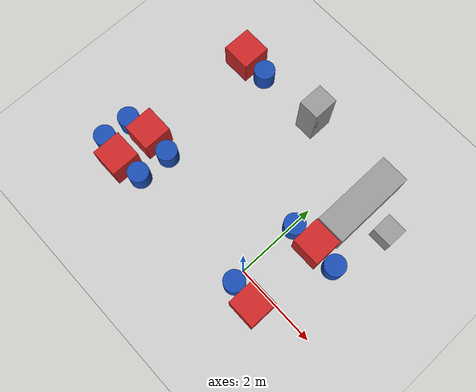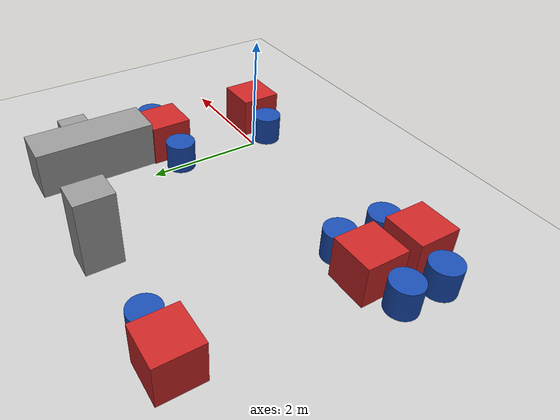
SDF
<sdf version="1.7">
 <world name="default">
  <model name="ground_plane">
   <static>1</static>
   <link name="link">
    <collision name="collision">
     <geometry><plane><normal>0 0 1</normal><size>100 100</size></plane></geometry>
     <surface>
      <contact><collide_bitmask>65535</collide_bitmask></contact>
      <friction><ode><mu>100</mu><mu2>50</mu2></ode></friction>
     </surface>
    </collision>
    <visual name="visual">
     <cast_shadows>0</cast_shadows>
     <geometry><plane><normal>0 0 1</normal><size>100 100</size></plane></geometry>
     <material>
      <script><uri>file://media/materials/scripts/gazebo.material</uri><name>Gazebo/Grey</name></script>
     </material>
    </visual>
   </link>
  </model>
  <model name="chair2_clone">
   <link name="link">
    <inertial>
     <mass>1</mass>
     <inertia><ixx>0.145833</ixx><ixy>0</ixy><ixz>0</ixz><iyy>0.145833</iyy><iyz>0</iyz><izz>0.125</izz></inertia>
    </inertial>
    <visual name="visual">
     <geometry><cylinder><radius>0.25</radius><length>0.5</length></cylinder></geometry>
     <material>
      <script><name>Gazebo/Grey</name><uri>file://media/materials/scripts/gazebo.material</uri></script>
      <shader type="pixel"><normal_map>__default__</normal_map></shader>
      <ambient>0.1 0.3 0.7 1</ambient>
      <diffuse>0.7 0.7 0.7 1</diffuse>
      <specular>0.01 0.01 0.01 1</specular>
      <emissive>0 0 0 1</emissive>
     </material>
    </visual>
    <collision name="collision">
     <geometry><cylinder><radius>0.25</radius><length>0.5</length></cylinder></geometry>
     <surface>
      <friction>
       <ode><mu>1</mu><mu2>1</mu2><fdir1>0 0 0</fdir1><slip1>0</slip1><slip2>0</slip2></ode>
       <torsional>
        <coefficient>1</coefficient>
        <patch_radius>0</patch_radius>
        <surface_radius>0</surface_radius>
        <use_patch_radius>1</use_patch_radius>
        <ode><slip>0</slip></ode>
       </torsional>
      </friction>
      <bounce><restitution_coefficient>0</restitution_coefficient><threshold>1e+06</threshold></bounce>
      <contact>
       <collide_without_contact>0</collide_without_contact>
       <collide_without_contact_bitmask>1</collide_without_contact_bitmask>
       <collide_bitmask>1</collide_bitmask>
       <ode>
        <soft_cfm>0</soft_cfm>
        <soft_erp>0.2</soft_erp>
        <kp>1e+13</kp>
        <kd>1</kd>
        <max_vel>0.01</max_vel>
        <min_depth>0</min_depth>
       </ode>
       <bullet>
        <split_impulse>1</split_impulse>
        <split_impulse_penetration_threshold>-0.01</split_impulse_penetration_threshold>
        <soft_cfm>0</soft_cfm>
        <soft_erp>0.2</soft_erp>
        <kp>1e+13</kp>
        <kd>1</kd>
       </bullet>
      </contact>
     </surface>
    </collision>
   </link>
   <static>1</static>
   <pose>-4.34714 -0.258544 0.25 0 -0 0</pose>
  </model>
  <model name="chair2_clone_1">
   <link name="link">
    <inertial>
     <mass>1</mass>
     <inertia><ixx>0.145833</ixx><ixy>0</ixy><ixz>0</ixz><iyy>0.145833</iyy><iyz>0</iyz><izz>0.125</izz></inertia>
    </inertial>
    <visual name="visual">
     <geometry><cylinder><radius>0.25</radius><length>0.5</length></cylinder></geometry>
     <material>
      <script><name>Gazebo/Grey</name><uri>file://media/materials/scripts/gazebo.material</uri></script>
      <shader type="pixel"><normal_map>__default__</normal_map></shader>
      <ambient>0.1 0.3 0.7 1</ambient>
      <diffuse>0.7 0.7 0.7 1</diffuse>
      <specular>0.01 0.01 0.01 1</specular>
      <emissive>0 0 0 1</emissive>
     </material>
    </visual>
    <collision name="collision">
     <geometry><cylinder><radius>0.25</radius><length>0.5</length></cylinder></geometry>
     <surface>
      <friction>
       <ode><mu>1</mu><mu2>1</mu2><fdir1>0 0 0</fdir1><slip1>0</slip1><slip2>0</slip2></ode>
       <torsional>
        <coefficient>1</coefficient>
        <patch_radius>0</patch_radius>
        <surface_radius>0</surface_radius>
        <use_patch_radius>1</use_patch_radius>
        <ode><slip>0</slip></ode>
       </torsional>
      </friction>
      <bounce><restitution_coefficient>0</restitution_coefficient><threshold>1e+06</threshold></bounce>
      <contact>
       <collide_without_contact>0</collide_without_contact>
       <collide_without_contact_bitmask>1</collide_without_contact_bitmask>
       <collide_bitmask>1</collide_bitmask>
       <ode>
        <soft_cfm>0</soft_cfm>
        <soft_erp>0.2</soft_erp>
        <kp>1e+13</kp>
        <kd>1</kd>
        <max_vel>0.01</max_vel>
        <min_depth>0</min_depth>
       </ode>
       <bullet>
        <split_impulse>1</split_impulse>
        <split_impulse_penetration_threshold>-0.01</split_impulse_penetration_threshold>
        <soft_cfm>0</soft_cfm>
        <soft_erp>0.2</soft_erp>
        <kp>1e+13</kp>
        <kd>1</kd>
       </bullet>
      </contact>
     </surface>
    </collision>
   </link>
   <static>1</static>
   <pose>-3.15619 -0.26133 0.25 0 -0 0</pose>
  </model>
  <model name="Card_table_clone">
   <link name="link">
    <inertial>
     <mass>10</mass>
     <inertia><ixx>1.66667</ixx><ixy>0</ixy><ixz>0</ixz><iyy>1.66667</iyy><iyz>0</iyz><izz>1.66667</izz></inertia>
    </inertial>
    <visual name="visual">
     <geometry><box><size>0.7 0.7 0.7</size></box></geometry>
     <material>
      <script><name>Gazebo/Red</name><uri>file://media/materials/scripts/gazebo.material</uri></script>
      <shader type="vertex"><normal_map>__default__</normal_map></shader>
      <ambient>1 0 0 1</ambient>
      <diffuse>0.9 0.7 0.7 1</diffuse>
      <specular>0.01 0.01 0.01 1</specular>
      <emissive>0 0 0 1</emissive>
     </material>
    </visual>
    <collision name="collision">
     <geometry><box><size>0.7 0.7 0.7</size></box></geometry>
     <surface>
      <friction>
       <ode><mu>1</mu><mu2>1</mu2><fdir1>0 0 0</fdir1><slip1>0</slip1><slip2>0</slip2></ode>
       <torsional>
        <coefficient>1</coefficient>
        <patch_radius>0</patch_radius>
        <surface_radius>0</surface_radius>
        <use_patch_radius>1</use_patch_radius>
        <ode><slip>0</slip></ode>
       </torsional>
      </friction>
      <bounce><restitution_coefficient>0</restitution_coefficient><threshold>1e+06</threshold></bounce>
      <contact>
       <collide_without_contact>0</collide_without_contact>
       <collide_without_contact_bitmask>1</collide_without_contact_bitmask>
       <collide_bitmask>1</collide_bitmask>
       <ode>
        <soft_cfm>0</soft_cfm>
        <soft_erp>0.2</soft_erp>
        <kp>1e+13</kp>
        <kd>1</kd>
        <max_vel>0.01</max_vel>
        <min_depth>0</min_depth>
       </ode>
       <bullet>
        <split_impulse>1</split_impulse>
        <split_impulse_penetration_threshold>-0.01</split_impulse_penetration_threshold>
        <soft_cfm>0</soft_cfm>
        <soft_erp>0.2</soft_erp>
        <kp>1e+13</kp>
        <kd>1</kd>
       </bullet>
      </contact>
     </surface>
    </collision>
   </link>
   <static>1</static>
   <pose>-3.74721 -0.360539 0.35 0 -0 0</pose>
  </model>
  <model name="Card_table_clone_clone">
   <link name="link">
    <inertial>
     <mass>10</mass>
     <inertia><ixx>1.66667</ixx><ixy>0</ixy><ixz>0</ixz><iyy>1.66667</iyy><iyz>0</iyz><izz>1.66667</izz></inertia>
    </inertial>
    <visual name="visual">
     <geometry><box><size>0.7 0.7 0.7</size></box></geometry>
     <material>
      <script><name>Gazebo/Red</name><uri>file://media/materials/scripts/gazebo.material</uri></script>
      <shader type="vertex"><normal_map>__default__</normal_map></shader>
      <ambient>1 0 0 1</ambient>
      <diffuse>0.9 0.7 0.7 1</diffuse>
      <specular>0.01 0.01 0.01 1</specular>
      <emissive>0 0 0 1</emissive>
     </material>
    </visual>
    <collision name="collision">
     <geometry><box><size>0.7 0.7 0.7</size></box></geometry>
     <surface>
      <friction>
       <ode><mu>1</mu><mu2>1</mu2><fdir1>0 0 0</fdir1><slip1>0</slip1><slip2>0</slip2></ode>
       <torsional>
        <coefficient>1</coefficient>
        <patch_radius>0</patch_radius>
        <surface_radius>0</surface_radius>
        <use_patch_radius>1</use_patch_radius>
        <ode><slip>0</slip></ode>
       </torsional>
      </friction>
      <bounce><restitution_coefficient>0</restitution_coefficient><threshold>1e+06</threshold></bounce>
      <contact>
       <collide_without_contact>0</collide_without_contact>
       <collide_without_contact_bitmask>1</collide_without_contact_bitmask>
       <collide_bitmask>1</collide_bitmask>
       <ode>
        <soft_cfm>0</soft_cfm>
        <soft_erp>0.2</soft_erp>
        <kp>1e+13</kp>
        <kd>1</kd>
        <max_vel>0.01</max_vel>
        <min_depth>0</min_depth>
       </ode>
       <bullet>
        <split_impulse>1</split_impulse>
        <split_impulse_penetration_threshold>-0.01</split_impulse_penetration_threshold>
        <soft_cfm>0</soft_cfm>
        <soft_erp>0.2</soft_erp>
        <kp>1e+13</kp>
        <kd>1</kd>
       </bullet>
      </contact>
     </surface>
    </collision>
   </link>
   <static>1</static>
   <pose>-3.72304 0.537084 0.35 0 -0 0</pose>
  </model>
  <model name="chair2_clone_clone">
   <link name="link">
    <inertial>
     <mass>1</mass>
     <inertia><ixx>0.145833</ixx><ixy>0</ixy><ixz>0</ixz><iyy>0.145833</iyy><iyz>0</iyz><izz>0.125</izz></inertia>
    </inertial>
    <visual name="visual">
     <geometry><cylinder><radius>0.25</radius><length>0.5</length></cylinder></geometry>
     <material>
      <script><name>Gazebo/Grey</name><uri>file://media/materials/scripts/gazebo.material</uri></script>
      <shader type="pixel"><normal_map>__default__</normal_map></shader>
      <ambient>0.1 0.3 0.7 1</ambient>
      <diffuse>0.7 0.7 0.7 1</diffuse>
      <specular>0.01 0.01 0.01 1</specular>
      <emissive>0 0 0 1</emissive>
     </material>
    </visual>
    <collision name="collision">
     <geometry><cylinder><radius>0.25</radius><length>0.5</length></cylinder></geometry>
     <surface>
      <friction>
       <ode><mu>1</mu><mu2>1</mu2><fdir1>0 0 0</fdir1><slip1>0</slip1><slip2>0</slip2></ode>
       <torsional>
        <coefficient>1</coefficient>
        <patch_radius>0</patch_radius>
        <surface_radius>0</surface_radius>
        <use_patch_radius>1</use_patch_radius>
        <ode><slip>0</slip></ode>
       </torsional>
      </friction>
      <bounce><restitution_coefficient>0</restitution_coefficient><threshold>1e+06</threshold></bounce>
      <contact>
       <collide_without_contact>0</collide_without_contact>
       <collide_without_contact_bitmask>1</collide_without_contact_bitmask>
       <collide_bitmask>1</collide_bitmask>
       <ode>
        <soft_cfm>0</soft_cfm>
        <soft_erp>0.2</soft_erp>
        <kp>1e+13</kp>
        <kd>1</kd>
        <max_vel>0.01</max_vel>
        <min_depth>0</min_depth>
       </ode>
       <bullet>
        <split_impulse>1</split_impulse>
        <split_impulse_penetration_threshold>-0.01</split_impulse_penetration_threshold>
        <soft_cfm>0</soft_cfm>
        <soft_erp>0.2</soft_erp>
        <kp>1e+13</kp>
        <kd>1</kd>
       </bullet>
      </contact>
     </surface>
    </collision>
   </link>
   <static>1</static>
   <pose>-4.3235 0.422897 0.25 0 -0 0</pose>
  </model>
  <model name="chair2_clone_3">
   <link name="link">
    <inertial>
     <mass>1</mass>
     <inertia><ixx>0.145833</ixx><ixy>0</ixy><ixz>0</ixz><iyy>0.145833</iyy><iyz>0</iyz><izz>0.125</izz></inertia>
    </inertial>
    <visual name="visual">
     <geometry><cylinder><radius>0.25</radius><length>0.5</length></cylinder></geometry>
     <material>
      <script><name>Gazebo/Grey</name><uri>file://media/materials/scripts/gazebo.material</uri></script>
      <shader type="pixel"><normal_map>__default__</normal_map></shader>
      <ambient>0.1 0.3 0.7 1</ambient>
      <diffuse>0.7 0.7 0.7 1</diffuse>
      <specular>0.01 0.01 0.01 1</specular>
      <emissive>0 0 0 1</emissive>
     </material>
    </visual>
    <collision name="collision">
     <geometry><cylinder><radius>0.25</radius><length>0.5</length></cylinder></geometry>
     <surface>
      <friction>
       <ode><mu>1</mu><mu2>1</mu2><fdir1>0 0 0</fdir1><slip1>0</slip1><slip2>0</slip2></ode>
       <torsional>
        <coefficient>1</coefficient>
        <patch_radius>0</patch_radius>
        <surface_radius>0</surface_radius>
        <use_patch_radius>1</use_patch_radius>
        <ode><slip>0</slip></ode>
       </torsional>
      </friction>
      <bounce><restitution_coefficient>0</restitution_coefficient><threshold>1e+06</threshold></bounce>
      <contact>
       <collide_without_contact>0</collide_without_contact>
       <collide_without_contact_bitmask>1</collide_without_contact_bitmask>
       <collide_bitmask>1</collide_bitmask>
       <ode>
        <soft_cfm>0</soft_cfm>
        <soft_erp>0.2</soft_erp>
        <kp>1e+13</kp>
        <kd>1</kd>
        <max_vel>0.01</max_vel>
        <min_depth>0</min_depth>
       </ode>
       <bullet>
        <split_impulse>1</split_impulse>
        <split_impulse_penetration_threshold>-0.01</split_impulse_penetration_threshold>
        <soft_cfm>0</soft_cfm>
        <soft_erp>0.2</soft_erp>
        <kp>1e+13</kp>
        <kd>1</kd>
       </bullet>
      </contact>
     </surface>
    </collision>
   </link>
   <static>1</static>
   <pose>-3.05884 3.51855 0.25 0 -0 0</pose>
  </model>
  <model name="Card_table_clone_0">
   <link name="link">
    <inertial>
     <mass>10</mass>
     <inertia><ixx>1.66667</ixx><ixy>0</ixy><ixz>0</ixz><iyy>1.66667</iyy><iyz>0</iyz><izz>1.66667</izz></inertia>
    </inertial>
    <visual name="visual">
     <geometry><box><size>0.7 0.7 0.7</size></box></geometry>
     <material>
      <script><name>Gazebo/Red</name><uri>file://media/materials/scripts/gazebo.material</uri></script>
      <shader type="vertex"><normal_map>__default__</normal_map></shader>
      <ambient>1 0 0 1</ambient>
      <diffuse>0.9 0.7 0.7 1</diffuse>
      <specular>0.01 0.01 0.01 1</specular>
      <emissive>0 0 0 1</emissive>
     </material>
    </visual>
    <collision name="collision">
     <geometry><box><size>0.7 0.7 0.7</size></box></geometry>
     <surface>
      <friction>
       <ode><mu>1</mu><mu2>1</mu2><fdir1>0 0 0</fdir1><slip1>0</slip1><slip2>0</slip2></ode>
       <torsional>
        <coefficient>1</coefficient>
        <patch_radius>0</patch_radius>
        <surface_radius>0</surface_radius>
        <use_patch_radius>1</use_patch_radius>
        <ode><slip>0</slip></ode>
       </torsional>
      </friction>
      <bounce><restitution_coefficient>0</restitution_coefficient><threshold>1e+06</threshold></bounce>
      <contact>
       <collide_without_contact>0</collide_without_contact>
       <collide_without_contact_bitmask>1</collide_without_contact_bitmask>
       <collide_bitmask>1</collide_bitmask>
       <ode>
        <soft_cfm>0</soft_cfm>
        <soft_erp>0.2</soft_erp>
        <kp>1e+13</kp>
        <kd>1</kd>
        <max_vel>0.01</max_vel>
        <min_depth>0</min_depth>
       </ode>
       <bullet>
        <split_impulse>1</split_impulse>
        <split_impulse_penetration_threshold>-0.01</split_impulse_penetration_threshold>
        <soft_cfm>0</soft_cfm>
        <soft_erp>0.2</soft_erp>
        <kp>1e+13</kp>
        <kd>1</kd>
       </bullet>
      </contact>
     </surface>
    </collision>
   </link>
   <static>1</static>
   <pose>-3.67958 3.50831 0.35 0 -0 0</pose>
  </model>
  <model name="counter">
   <link name="link">
    <inertial>
     <mass>1</mass>
     <inertia>
      <ixx>0.166667</ixx>
      <ixy>0</ixy>
      <ixz>0</ixz>
      <iyy>0.166667</iyy>
      <iyz>0</iyz>
      <izz>0.166667</izz>
     </inertia>
    </inertial>
    <visual name="visual">
     <geometry><box><size>2 0.7 0.8</size></box></geometry>
     <material>
      <script><name>Gazebo/Grey</name><uri>file://media/materials/scripts/gazebo.material</uri></script>
      <shader type="pixel"><normal_map>__default__</normal_map></shader>
      <ambient>1 1 1 1</ambient>
      <diffuse>0.7 0.7 0.7 1</diffuse>
      <specular>0.01 0.01 0.01 1</specular>
      <emissive>0 0 0 1</emissive>
     </material>
    </visual>
    <collision name="collision">
     <geometry><box><size>2 0.7 0.8</size></box></geometry>
     <surface>
      <friction>
       <ode><mu>1</mu><mu2>1</mu2><fdir1>0 0 0</fdir1><slip1>0</slip1><slip2>0</slip2></ode>
       <torsional>
        <coefficient>1</coefficient>
        <patch_radius>0</patch_radius>
        <surface_radius>0</surface_radius>
        <use_patch_radius>1</use_patch_radius>
        <ode><slip>0</slip></ode>
       </torsional>
      </friction>
      <bounce><restitution_coefficient>0</restitution_coefficient><threshold>1e+06</threshold></bounce>
      <contact>
       <collide_without_contact>0</collide_without_contact>
       <collide_without_contact_bitmask>1</collide_without_contact_bitmask>
       <collide_bitmask>1</collide_bitmask>
       <ode>
        <soft_cfm>0</soft_cfm>
        <soft_erp>0.2</soft_erp>
        <kp>1e+13</kp>
        <kd>1</kd>
        <max_vel>0.01</max_vel>
        <min_depth>0</min_depth>
       </ode>
       <bullet>
        <split_impulse>1</split_impulse>
        <split_impulse_penetration_threshold>-0.01</split_impulse_penetration_threshold>
        <soft_cfm>0</soft_cfm>
        <soft_erp>0.2</soft_erp>
        <kp>1e+13</kp>
        <kd>1</kd>
       </bullet>
      </contact>
     </surface>
    </collision>
   </link>
   <static>0</static>
   <pose>0.6903 2.85186 0.400021 0.000124 -4.4e-05 1.57079</pose>
  </model>
  <model name="counter_chair">
   <link name="link">
    <inertial>
     <mass>1</mass>
     <inertia>
      <ixx>0.166667</ixx>
      <ixy>0</ixy>
      <ixz>0</ixz>
      <iyy>0.166667</iyy>
      <iyz>0</iyz>
      <izz>0.166667</izz>
     </inertia>
    </inertial>
    <visual name="visual">
     <geometry><box><size>0.5 0.5 0.5</size></box></geometry>
     <material>
      <script><name>Gazebo/Grey</name><uri>file://media/materials/scripts/gazebo.material</uri></script>
      <shader type="pixel"><normal_map>__default__</normal_map></shader>
      <ambient>0 0 0 1</ambient>
      <diffuse>0.7 0.7 0.7 1</diffuse>
      <specular>0.01 0.01 0.01 1</specular>
      <emissive>0 0 0 1</emissive>
     </material>
    </visual>
    <collision name="collision">
     <geometry><box><size>0.5 0.5 0.5</size></box></geometry>
     <surface>
      <friction>
       <ode><mu>1</mu><mu2>1</mu2><fdir1>0 0 0</fdir1><slip1>0</slip1><slip2>0</slip2></ode>
       <torsional>
        <coefficient>1</coefficient>
        <patch_radius>0</patch_radius>
        <surface_radius>0</surface_radius>
        <use_patch_radius>1</use_patch_radius>
        <ode><slip>0</slip></ode>
       </torsional>
      </friction>
      <bounce><restitution_coefficient>0</restitution_coefficient><threshold>1e+06</threshold></bounce>
      <contact>
       <collide_without_contact>0</collide_without_contact>
       <collide_without_contact_bitmask>1</collide_without_contact_bitmask>
       <collide_bitmask>1</collide_bitmask>
       <ode>
        <soft_cfm>0</soft_cfm>
        <soft_erp>0.2</soft_erp>
        <kp>1e+13</kp>
        <kd>1</kd>
        <max_vel>0.01</max_vel>
        <min_depth>0</min_depth>
       </ode>
       <bullet>
        <split_impulse>1</split_impulse>
        <split_impulse_penetration_threshold>-0.01</split_impulse_penetration_threshold>
        <soft_cfm>0</soft_cfm>
        <soft_erp>0.2</soft_erp>
        <kp>1e+13</kp>
        <kd>1</kd>
       </bullet>
      </contact>
     </surface>
    </collision>
   </link>
   <static>0</static>
   <pose>1.5459 2.86486 0.25 0 -0 0</pose>
  </model>
  <model name="Card_table_clone_clone_0">
   <link name="link">
    <inertial>
     <mass>10</mass>
     <inertia><ixx>1.66667</ixx><ixy>0</ixy><ixz>0</ixz><iyy>1.66667</iyy><iyz>0</iyz><izz>1.66667</izz></inertia>
    </inertial>
    <visual name="visual">
     <geometry><box><size>0.7 0.7 0.7</size></box></geometry>
     <material>
      <script><name>Gazebo/Red</name><uri>file://media/materials/scripts/gazebo.material</uri></script>
      <shader type="vertex"><normal_map>__default__</normal_map></shader>
      <ambient>1 0 0 1</ambient>
      <diffuse>0.9 0.7 0.7 1</diffuse>
      <specular>0.01 0.01 0.01 1</specular>
      <emissive>0 0 0 1</emissive>
     </material>
    </visual>
    <collision name="collision">
     <geometry><box><size>0.7 0.7 0.7</size></box></geometry>
     <surface>
      <friction>
       <ode><mu>1</mu><mu2>1</mu2><fdir1>0 0 0</fdir1><slip1>0</slip1><slip2>0</slip2></ode>
       <torsional>
        <coefficient>1</coefficient>
        <patch_radius>0</patch_radius>
        <surface_radius>0</surface_radius>
        <use_patch_radius>1</use_patch_radius>
        <ode><slip>0</slip></ode>
       </torsional>
      </friction>
      <bounce><restitution_coefficient>0</restitution_coefficient><threshold>1e+06</threshold></bounce>
      <contact>
       <collide_without_contact>0</collide_without_contact>
       <collide_without_contact_bitmask>1</collide_without_contact_bitmask>
       <collide_bitmask>1</collide_bitmask>
       <ode>
        <soft_cfm>0</soft_cfm>
        <soft_erp>0.2</soft_erp>
        <kp>1e+13</kp>
        <kd>1</kd>
        <max_vel>0.01</max_vel>
        <min_depth>0</min_depth>
       </ode>
       <bullet>
        <split_impulse>1</split_impulse>
        <split_impulse_penetration_threshold>-0.01</split_impulse_penetration_threshold>
        <soft_cfm>0</soft_cfm>
        <soft_erp>0.2</soft_erp>
        <kp>1e+13</kp>
        <kd>1</kd>
       </bullet>
      </contact>
     </surface>
    </collision>
   </link>
   <static>1</static>
   <pose>0.665222 1.50187 0.35 0 -0 0</pose>
  </model>
  <model name="chair2_clone_1_clone">
   <link name="link">
    <inertial>
     <mass>1</mass>
     <inertia><ixx>0.145833</ixx><ixy>0</ixy><ixz>0</ixz><iyy>0.145833</iyy><iyz>0</iyz><izz>0.125</izz></inertia>
    </inertial>
    <visual name="visual">
     <geometry><cylinder><radius>0.25</radius><length>0.5</length></cylinder></geometry>
     <material>
      <script><name>Gazebo/Grey</name><uri>file://media/materials/scripts/gazebo.material</uri></script>
      <shader type="pixel"><normal_map>__default__</normal_map></shader>
      <ambient>0.1 0.3 0.7 1</ambient>
      <diffuse>0.7 0.7 0.7 1</diffuse>
      <specular>0.01 0.01 0.01 1</specular>
      <emissive>0 0 0 1</emissive>
     </material>
    </visual>
    <collision name="collision">
     <geometry><cylinder><radius>0.25</radius><length>0.5</length></cylinder></geometry>
     <surface>
      <friction>
       <ode><mu>1</mu><mu2>1</mu2><fdir1>0 0 0</fdir1><slip1>0</slip1><slip2>0</slip2></ode>
       <torsional>
        <coefficient>1</coefficient>
        <patch_radius>0</patch_radius>
        <surface_radius>0</surface_radius>
        <use_patch_radius>1</use_patch_radius>
        <ode><slip>0</slip></ode>
       </torsional>
      </friction>
      <bounce><restitution_coefficient>0</restitution_coefficient><threshold>1e+06</threshold></bounce>
      <contact>
       <collide_without_contact>0</collide_without_contact>
       <collide_without_contact_bitmask>1</collide_without_contact_bitmask>
       <collide_bitmask>1</collide_bitmask>
       <ode>
        <soft_cfm>0</soft_cfm>
        <soft_erp>0.2</soft_erp>
        <kp>1e+13</kp>
        <kd>1</kd>
        <max_vel>0.01</max_vel>
        <min_depth>0</min_depth>
       </ode>
       <bullet>
        <split_impulse>1</split_impulse>
        <split_impulse_penetration_threshold>-0.01</split_impulse_penetration_threshold>
        <soft_cfm>0</soft_cfm>
        <soft_erp>0.2</soft_erp>
        <kp>1e+13</kp>
        <kd>1</kd>
       </bullet>
      </contact>
     </surface>
    </collision>
   </link>
   <static>1</static>
   <pose>1.28682 1.46881 0.25 0 -0 0</pose>
  </model>
  <model name="chair2_clone_1_clone_0">
   <link name="link">
    <inertial>
     <mass>1</mass>
     <inertia><ixx>0.145833</ixx><ixy>0</ixy><ixz>0</ixz><iyy>0.145833</iyy><iyz>0</iyz><izz>0.125</izz></inertia>
    </inertial>
    <visual name="visual">
     <geometry><cylinder><radius>0.25</radius><length>0.5</length></cylinder></geometry>
     <material>
      <script><name>Gazebo/Grey</name><uri>file://media/materials/scripts/gazebo.material</uri></script>
      <shader type="pixel"><normal_map>__default__</normal_map></shader>
      <ambient>0.1 0.3 0.7 1</ambient>
      <diffuse>0.7 0.7 0.7 1</diffuse>
      <specular>0.01 0.01 0.01 1</specular>
      <emissive>0 0 0 1</emissive>
     </material>
    </visual>
    <collision name="collision">
     <geometry><cylinder><radius>0.25</radius><length>0.5</length></cylinder></geometry>
     <surface>
      <friction>
       <ode><mu>1</mu><mu2>1</mu2><fdir1>0 0 0</fdir1><slip1>0</slip1><slip2>0</slip2></ode>
       <torsional>
        <coefficient>1</coefficient>
        <patch_radius>0</patch_radius>
        <surface_radius>0</surface_radius>
        <use_patch_radius>1</use_patch_radius>
        <ode><slip>0</slip></ode>
       </torsional>
      </friction>
      <bounce><restitution_coefficient>0</restitution_coefficient><threshold>1e+06</threshold></bounce>
      <contact>
       <collide_without_contact>0</collide_without_contact>
       <collide_without_contact_bitmask>1</collide_without_contact_bitmask>
       <collide_bitmask>1</collide_bitmask>
       <ode>
        <soft_cfm>0</soft_cfm>
        <soft_erp>0.2</soft_erp>
        <kp>1e+13</kp>
        <kd>1</kd>
        <max_vel>0.01</max_vel>
        <min_depth>0</min_depth>
       </ode>
       <bullet>
        <split_impulse>1</split_impulse>
        <split_impulse_penetration_threshold>-0.01</split_impulse_penetration_threshold>
        <soft_cfm>0</soft_cfm>
        <soft_erp>0.2</soft_erp>
        <kp>1e+13</kp>
        <kd>1</kd>
       </bullet>
      </contact>
     </surface>
    </collision>
   </link>
   <static>1</static>
   <pose>0.057954 1.46895 0.25 0 -0 0</pose>
  </model>
  <model name="Card_table_clone_clone_0_clone">
   <link name="link">
    <inertial>
     <mass>10</mass>
     <inertia><ixx>1.66667</ixx><ixy>0</ixy><ixz>0</ixz><iyy>1.66667</iyy><iyz>0</iyz><izz>1.66667</izz></inertia>
    </inertial>
    <visual name="visual">
     <geometry><box><size>0.7 0.7 0.7</size></box></geometry>
     <material>
      <script><name>Gazebo/Red</name><uri>file://media/materials/scripts/gazebo.material</uri></script>
      <shader type="vertex"><normal_map>__default__</normal_map></shader>
      <ambient>1 0 0 1</ambient>
      <diffuse>0.9 0.7 0.7 1</diffuse>
      <specular>0.01 0.01 0.01 1</specular>
      <emissive>0 0 0 1</emissive>
     </material>
    </visual>
    <collision name="collision">
     <geometry><box><size>0.7 0.7 0.7</size></box></geometry>
     <surface>
      <friction>
       <ode><mu>1</mu><mu2>1</mu2><fdir1>0 0 0</fdir1><slip1>0</slip1><slip2>0</slip2></ode>
       <torsional>
        <coefficient>1</coefficient>
        <patch_radius>0</patch_radius>
        <surface_radius>0</surface_radius>
        <use_patch_radius>1</use_patch_radius>
        <ode><slip>0</slip></ode>
       </torsional>
      </friction>
      <bounce><restitution_coefficient>0</restitution_coefficient><threshold>1e+06</threshold></bounce>
      <contact>
       <collide_without_contact>0</collide_without_contact>
       <collide_without_contact_bitmask>1</collide_without_contact_bitmask>
       <collide_bitmask>1</collide_bitmask>
       <ode>
        <soft_cfm>0</soft_cfm>
        <soft_erp>0.2</soft_erp>
        <kp>1e+13</kp>
        <kd>1</kd>
        <max_vel>0.01</max_vel>
        <min_depth>0</min_depth>
       </ode>
       <bullet>
        <split_impulse>1</split_impulse>
        <split_impulse_penetration_threshold>-0.01</split_impulse_penetration_threshold>
        <soft_cfm>0</soft_cfm>
        <soft_erp>0.2</soft_erp>
        <kp>1e+13</kp>
        <kd>1</kd>
       </bullet>
      </contact>
     </surface>
    </collision>
   </link>
   <static>1</static>
   <pose>0.679105 -0.370657 0.35 0 -0 0</pose>
  </model>
  <model name="chair2_clone_1_clone_0_clone">
   <link name="link">
    <inertial>
     <mass>1</mass>
     <inertia><ixx>0.145833</ixx><ixy>0</ixy><ixz>0</ixz><iyy>0.145833</iyy><iyz>0</iyz><izz>0.125</izz></inertia>
    </inertial>
    <visual name="visual">
     <geometry><cylinder><radius>0.25</radius><length>0.5</length></cylinder></geometry>
     <material>
      <script><name>Gazebo/Grey</name><uri>file://media/materials/scripts/gazebo.material</uri></script>
      <shader type="pixel"><normal_map>__default__</normal_map></shader>
      <ambient>0.1 0.3 0.7 1</ambient>
      <diffuse>0.7 0.7 0.7 1</diffuse>
      <specular>0.01 0.01 0.01 1</specular>
      <emissive>0 0 0 1</emissive>
     </material>
    </visual>
    <collision name="collision">
     <geometry><cylinder><radius>0.25</radius><length>0.5</length></cylinder></geometry>
     <surface>
      <friction>
       <ode><mu>1</mu><mu2>1</mu2><fdir1>0 0 0</fdir1><slip1>0</slip1><slip2>0</slip2></ode>
       <torsional>
        <coefficient>1</coefficient>
        <patch_radius>0</patch_radius>
        <surface_radius>0</surface_radius>
        <use_patch_radius>1</use_patch_radius>
        <ode><slip>0</slip></ode>
       </torsional>
      </friction>
      <bounce><restitution_coefficient>0</restitution_coefficient><threshold>1e+06</threshold></bounce>
      <contact>
       <collide_without_contact>0</collide_without_contact>
       <collide_without_contact_bitmask>1</collide_without_contact_bitmask>
       <collide_bitmask>1</collide_bitmask>
       <ode>
        <soft_cfm>0</soft_cfm>
        <soft_erp>0.2</soft_erp>
        <kp>1e+13</kp>
        <kd>1</kd>
        <max_vel>0.01</max_vel>
        <min_depth>0</min_depth>
       </ode>
       <bullet>
        <split_impulse>1</split_impulse>
        <split_impulse_penetration_threshold>-0.01</split_impulse_penetration_threshold>
        <soft_cfm>0</soft_cfm>
        <soft_erp>0.2</soft_erp>
        <kp>1e+13</kp>
        <kd>1</kd>
       </bullet>
      </contact>
     </surface>
    </collision>
   </link>
   <static>1</static>
   <pose>0.070177 -0.326506 0.25 0 -0 0</pose>
  </model>
  <model name="Fridge">
   <link name="link">
    <inertial>
     <mass>1</mass>
     <inertia>
      <ixx>0.166667</ixx>
      <ixy>0</ixy>
      <ixz>0</ixz>
      <iyy>0.166667</iyy>
      <iyz>0</iyz>
      <izz>0.166667</izz>
     </inertia>
    </inertial>
    <kinematic>1</kinematic>
    <visual name="visual">
     <geometry><box><size>0.5 0.6 1.25</size></box></geometry>
     <material>
      <script><name>Gazebo/Grey</name><uri>file://media/materials/scripts/gazebo.material</uri></script>
      <shader type="pixel"><normal_map>__default__</normal_map></shader>
      <ambient>0.3 0.3 0.3 1</ambient>
      <diffuse>1 1 1 1</diffuse>
      <specular>0.01 0.01 0.01 1</specular>
      <emissive>0 0 0 1</emissive>
     </material>
    </visual>
    <collision name="collision">
     <geometry><box><size>0.5 0.6 1.25</size></box></geometry>
     <surface>
      <friction>
       <ode><mu>1</mu><mu2>1</mu2><fdir1>0 0 0</fdir1><slip1>0</slip1><slip2>0</slip2></ode>
       <torsional>
        <coefficient>1</coefficient>
        <patch_radius>0</patch_radius>
        <surface_radius>0</surface_radius>
        <use_patch_radius>1</use_patch_radius>
        <ode><slip>0</slip></ode>
       </torsional>
      </friction>
      <bounce><restitution_coefficient>0</restitution_coefficient><threshold>1e+06</threshold></bounce>
      <contact>
       <collide_without_contact>0</collide_without_contact>
       <collide_without_contact_bitmask>1</collide_without_contact_bitmask>
       <collide_bitmask>1</collide_bitmask>
       <ode>
        <soft_cfm>0</soft_cfm>
        <soft_erp>0.2</soft_erp>
        <kp>1e+13</kp>
        <kd>1</kd>
        <max_vel>0.01</max_vel>
        <min_depth>0</min_depth>
       </ode>
       <bullet>
        <split_impulse>1</split_impulse>
        <split_impulse_penetration_threshold>-0.01</split_impulse_penetration_threshold>
        <soft_cfm>0</soft_cfm>
        <soft_erp>0.2</soft_erp>
        <kp>1e+13</kp>
        <kd>1</kd>
       </bullet>
      </contact>
     </surface>
    </collision>
   </link>
   <link name="link_24">
    <inertial>
     <mass>1</mass>
     <inertia>
      <ixx>0.166667</ixx>
      <ixy>0</ixy>
      <ixz>0</ixz>
      <iyy>0.166667</iyy>
      <iyz>0</iyz>
      <izz>0.166667</izz>
     </inertia>
    </inertial>
    <pose>0.27 -0.285 0.3 0 -0 0</pose>
    <visual name="visual">
     <geometry><box><size>0.04 0.03 0.3</size></box></geometry>
     <material>
      <lighting>1</lighting>
      <script><uri>file://media/materials/scripts/gazebo.material</uri><name>Gazebo/Grey</name></script>
      <shader type="pixel"><normal_map>__default__</normal_map></shader>
      <ambient>0.3 0.3 0.3 1</ambient>
      <diffuse>0.7 0.7 0.7 1</diffuse>
      <specular>0.01 0.01 0.01 1</specular>
      <emissive>0 0 0 1</emissive>
     </material>
    </visual>
    <collision name="collision">
     <geometry><box><size>0.04 0.03 0.3</size></box></geometry>
     <surface>
      <friction>
       <ode><mu>1</mu><mu2>1</mu2><fdir1>0 0 0</fdir1><slip1>0</slip1><slip2>0</slip2></ode>
       <torsional>
        <coefficient>1</coefficient>
        <patch_radius>0</patch_radius>
        <surface_radius>0</surface_radius>
        <use_patch_radius>1</use_patch_radius>
        <ode><slip>0</slip></ode>
       </torsional>
      </friction>
      <bounce><restitution_coefficient>0</restitution_coefficient><threshold>1e+06</threshold></bounce>
      <contact>
       <collide_without_contact>0</collide_without_contact>
       <collide_without_contact_bitmask>1</collide_without_contact_bitmask>
       <collide_bitmask>1</collide_bitmask>
       <ode>
        <soft_cfm>0</soft_cfm>
        <soft_erp>0.2</soft_erp>
        <kp>1e+13</kp>
        <kd>1</kd>
        <max_vel>0.01</max_vel>
        <min_depth>0</min_depth>
       </ode>
       <bullet>
        <split_impulse>1</split_impulse>
        <split_impulse_penetration_threshold>-0.01</split_impulse_penetration_threshold>
        <soft_cfm>0</soft_cfm>
        <soft_erp>0.2</soft_erp>
        <kp>1e+13</kp>
        <kd>1</kd>
       </bullet>
      </contact>
     </surface>
    </collision>
   </link>
   <static>1</static>
   <pose>-1.4527 3.55734 0.625 0 -0 0</pose>
  </model>
  <model name="chair2_clone_clone_clone">
   <link name="link">
    <inertial>
     <mass>1</mass>
     <inertia><ixx>0.145833</ixx><ixy>0</ixy><ixz>0</ixz><iyy>0.145833</iyy><iyz>0</iyz><izz>0.125</izz></inertia>
    </inertial>
    <visual name="visual">
     <geometry><cylinder><radius>0.25</radius><length>0.5</length></cylinder></geometry>
     <material>
      <script><name>Gazebo/Grey</name><uri>file://media/materials/scripts/gazebo.material</uri></script>
      <shader type="pixel"><normal_map>__default__</normal_map></shader>
      <ambient>0.1 0.3 0.7 1</ambient>
      <diffuse>0.7 0.7 0.7 1</diffuse>
      <specular>0.01 0.01 0.01 1</specular>
      <emissive>0 0 0 1</emissive>
     </material>
    </visual>
    <collision name="collision">
     <geometry><cylinder><radius>0.25</radius><length>0.5</length></cylinder></geometry>
     <surface>
      <friction>
       <ode><mu>1</mu><mu2>1</mu2><fdir1>0 0 0</fdir1><slip1>0</slip1><slip2>0</slip2></ode>
       <torsional>
        <coefficient>1</coefficient>
        <patch_radius>0</patch_radius>
        <surface_radius>0</surface_radius>
        <use_patch_radius>1</use_patch_radius>
        <ode><slip>0</slip></ode>
       </torsional>
      </friction>
      <bounce><restitution_coefficient>0</restitution_coefficient><threshold>1e+06</threshold></bounce>
      <contact>
       <collide_without_contact>0</collide_without_contact>
       <collide_without_contact_bitmask>1</collide_without_contact_bitmask>
       <collide_bitmask>1</collide_bitmask>
       <ode>
        <soft_cfm>0</soft_cfm>
        <soft_erp>0.2</soft_erp>
        <kp>1e+13</kp>
        <kd>1</kd>
        <max_vel>0.01</max_vel>
        <min_depth>0</min_depth>
       </ode>
       <bullet>
        <split_impulse>1</split_impulse>
        <split_impulse_penetration_threshold>-0.01</split_impulse_penetration_threshold>
        <soft_cfm>0</soft_cfm>
        <soft_erp>0.2</soft_erp>
        <kp>1e+13</kp>
        <kd>1</kd>
       </bullet>
      </contact>
     </surface>
    </collision>
   </link>
   <static>1</static>
   <pose>-3.10938 0.531949 0.25 0 -0 0</pose>
  </model>
 </world>
</sdf>
